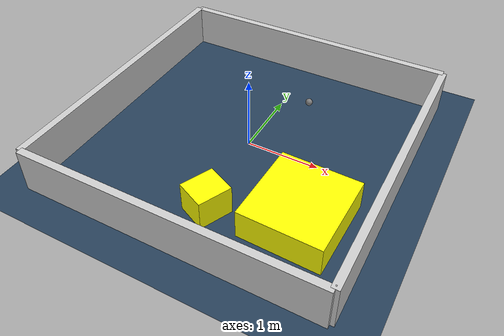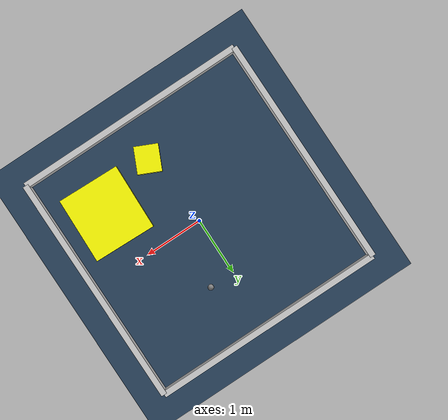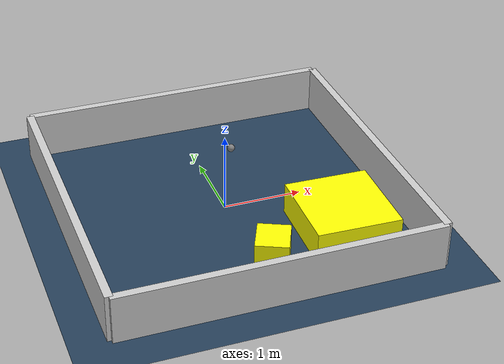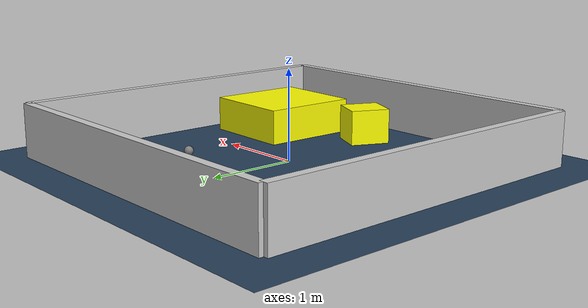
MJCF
<?xml version="1.0" ?>
<mujoco model="generated_environment">
  <option timestep="0.01" integrator="RK4" cone="elliptic"/>
  <default>
    <geom density="1"/>
  </default>
  <asset>
    <texture builtin="gradient" height="3072" rgb1="0.3 0.5 0.7" rgb2="0 0 0" type="skybox" width="512"/>
    <texture builtin="checker" height="300" mark="edge" markrgb="0.8 0.8 0.8" name="groundplane" rgb1="0.2 0.3 0.4" rgb2="0.1 0.2 0.3" type="2d" width="300"/>
    <material name="groundplane" reflectance="0.2" texrepeat="5 5" texture="groundplane" texuniform="true"/>
    <material name="robot" rgba="0.0 1.0 0.0 1"/>
  </asset>
  <worldbody>
    <light dir="0 0 -1" directional="true" pos="0 0 1.5"/>
    <geom condim="4" friction="1.0 0.005 0.001" material="groundplane" name="floor" size="0 0 0.05" type="plane"/>
    <body name="walls">
      <geom name="wall_1" condim="4" pos="-2.0 0.0 0.3" rgba="0.800000011920929 0.800000011920929 0.800000011920929 1.0" size="0.05 2.0 0.3" type="box"/>
      <geom name="wall_2" condim="4" pos="2.0 0.0 0.3" rgba="0.800000011920929 0.800000011920929 0.800000011920929 1.0" size="0.05 2.0 0.3" type="box"/>
      <geom name="wall_3" condim="4" pos="0.0 -2.0 0.3" rgba="0.800000011920929 0.800000011920929 0.800000011920929 1.0" size="2.0 0.05 0.3" type="box"/>
      <geom name="wall_4" condim="4" pos="0.0 2.0 0.3" rgba="0.800000011920929 0.800000011920929 0.800000011920929 1.0" size="2.0 0.05 0.3" type="box"/>
    </body>
    <body name="robot">
      <joint name="joint_x" type="slide" pos="0 0 0" axis="1 0 0"/>
      <joint name="joint_y" type="slide" pos="0 0 0" axis="0 1 0"/>
      <geom name="robot" type="sphere" pos="0.4350728628925453 0.9947235908074643 0.2" size="0.05" mass="5." friction="1.0 0.005 0.0001" condim="4"/>
      <site name="sensor_ball"/>
    </body>
    <body name="obstacle_1_movable">
      <geom name="obstacle_1_movable" condim="4" pos="1.1752210592209658 -0.91873220311232 0.2" euler="0 0 178.33177558415312" friction="1.0 0.005 0.001" rgba="1 1 0 1" size="0.5334685084111996 0.5674928182458858 0.2" type="box" mass="0.1"/>
      <joint type="free"/>
    </body>
    <body name="obstacle_2_movable">
      <geom name="obstacle_2_movable" condim="4" pos="0.1362672469999835 -1.2861355061696655 0.2" euler="0 0 155.08787539187236" friction="1.0 0.005 0.001" rgba="1 1 0 1" size="0.20217697181726357 0.2262703216283486 0.2" type="box" mass="0.1"/>
      <joint type="free"/>
    </body>
  </worldbody>
  <actuator>
    <motor name="actuator_x" joint="joint_x" gear="1" ctrlrange="-1 1"/>
    <motor name="actuator_y" joint="joint_y" gear="1" ctrlrange="-1 1"/>
  </actuator>
</mujoco>
